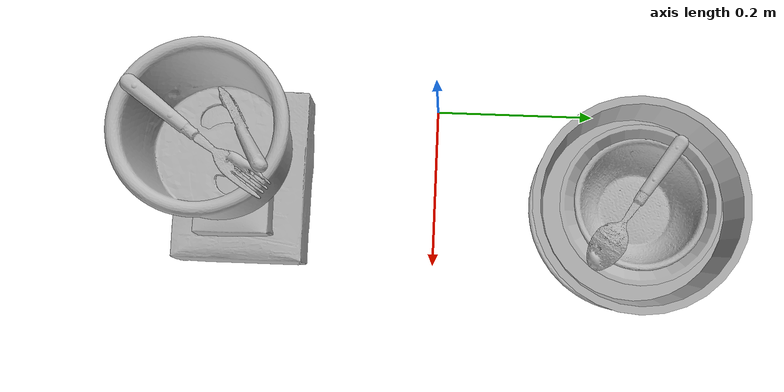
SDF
<?xml version="1.0" ?>
<sdf version="1.4">

  <world name="default">

    <light name="light1" type="point">

      <pose>0 0 1 0 0 0</pose>

      <diffuse>3 3 3 1</diffuse>

      <specular>3 3 3 1</specular>

    </light>

    <light name="light2" type="point">

      <pose>0 0.5 2 0 0 0</pose>

      <diffuse>1 1 1 1</diffuse>

      <specular>1 1 1 1</specular>

    </light>

    <light name="light3" type="point">

      <pose>0 0.5 2 0 0 0</pose>

      <diffuse>3 3 3 1</diffuse>

      <specular>3 3 3 1</specular>

    </light>

    <scene>

      <ambient>0.7 0.7 0.7</ambient>

    </scene>

    <model name="plate1">

      <link name="link_plate1">

        <collision name="default">

          <geometry>

            <mesh>

              <uri>model://plate/collision_meshes/collision.obj</uri>

              <scale>1.0 1.0 1.0</scale>

            </mesh>

          </geometry>

          <surface>

            <friction>

              <ode>

                <mu>0.5</mu>

                <mu2>0.5</mu2>

              </ode>

            </friction>

          </surface>

        </collision>

        <visual name="default">

          <geometry>

            <mesh>

              <uri>model://plate/visual_meshes/visual.dae</uri>

              <scale>1.0 1.0 1.0</scale>

            </mesh>

          </geometry>

        </visual>

        <inertial>

          <mass>0.11001742631196976</mass>

          <pose>-0.0006044686888344586 0.000278257648460567 -0.0010561998933553696 0.00221878912528286 -0.0032254756485070152 0.4526088917028743</pose>

          <inertia>

            <ixx>0.00051466376</ixx>

            <iyy>0.0005097412</iyy>

            <izz>0.0010066056</izz>

            <ixy>0</ixy>

            <ixz>0</ixz>

            <iyz>0</iyz>

          </inertia>

        </inertial>

      </link>

      <pose>0.1199374571442604 0.24998325109481812 0.013745173811912537 -6.870898378876059e-05 -0.00015102525217542117 -0.0008199449430793549</pose>

    </model>

    <model name="plate2">

      <link name="link_plate2">

        <collision name="default">

          <geometry>

            <mesh>

              <uri>model://pan_tefal/collision_meshes/collision.obj</uri>

              <scale>1.0 1.0 1.0</scale>

            </mesh>

          </geometry>

          <surface>

            <friction>

              <ode>

                <mu>0.5</mu>

                <mu2>0.5</mu2>

              </ode>

            </friction>

          </surface>

        </collision>

        <visual name="default">

          <geometry>

            <mesh>

              <uri>model://pan_tefal/visual_meshes/visual.dae</uri>

              <scale>1.0 1.0 1.0</scale>

            </mesh>

          </geometry>

        </visual>

        <inertial>

          <mass>1.457576870918274</mass>

          <pose>-0.00018002426077146083 3.279360316810198e-05 -0.008514936082065105 0.0008190306735146073 -0.00033013365411173643 -0.33185917339097665</pose>

          <inertia>

            <ixx>0.010061583</ixx>

            <iyy>0.01012645</iyy>

            <izz>0.01852144</izz>

            <ixy>0</ixy>

            <ixz>0</ixz>

            <iyz>0</iyz>

          </inertia>

        </inertial>

      </link>

      <pose>0.12074202299118042 0.25039994716644287 0.06386708468198776 0.0001711654377627013 -0.005030634423203114 0.007852426093482258</pose>

    </model>

    <model name="bowl1">

      <link name="link_bowl1">

        <collision name="default">

          <geometry>

            <mesh>

              <uri>model://bowl_a/collision_meshes/collision.obj</uri>

              <scale>1.0 1.0 1.0</scale>

            </mesh>

          </geometry>

          <surface>

            <friction>

              <ode>

                <mu>0.5</mu>

                <mu2>0.5</mu2>

              </ode>

            </friction>

          </surface>

        </collision>

        <visual name="default">

          <geometry>

            <mesh>

              <uri>model://bowl_a/visual_meshes/visual.dae</uri>

              <scale>1.0 1.0 1.0</scale>

            </mesh>

          </geometry>

        </visual>

        <inertial>

          <mass>0.29746556282043457</mass>

          <pose>0.0002786756958812475 4.7311452362919226e-05 -0.0013765294570475817 -0.0009805438325310402 -0.001093816410149737 -0.19123071729823712</pose>

          <inertia>

            <ixx>0.0008468981</ixx>

            <iyy>0.00085209764</iyy>

            <izz>0.0015062407</izz>

            <ixy>0</ixy>

            <ixz>0</ixz>

            <iyz>0</iyz>

          </inertia>

        </inertial>

      </link>

      <pose>0.12043753266334534 0.24972544610500336 0.06393508613109589 0.0021809924043001937 -0.005052287040652127 0.014174120151387618</pose>

    </model>

    <model name="bowl2">

      <link name="link_bowl2">

        <collision name="default">

          <geometry>

            <mesh>

              <uri>model://bowl/collision_meshes/collision.obj</uri>

              <scale>1.0 1.0 1.0</scale>

            </mesh>

          </geometry>

          <surface>

            <friction>

              <ode>

                <mu>0.5</mu>

                <mu2>0.5</mu2>

              </ode>

            </friction>

          </surface>

        </collision>

        <visual name="default">

          <geometry>

            <mesh>

              <uri>model://bowl/visual_meshes/visual.dae</uri>

              <scale>1.0 1.0 1.0</scale>

            </mesh>

          </geometry>

        </visual>

        <inertial>

          <mass>0.12348172068595886</mass>

          <pose>0.0002044529828708619 -0.0010302055161446333 -0.0008042656118050218 -0.01576411854188812 0.014546757923928972 0.7140383762832406</pose>

          <inertia>

            <ixx>0.0002836472</ixx>

            <iyy>0.00027730947</iyy>

            <izz>0.00047719217</izz>

            <ixy>0</ixy>

            <ixz>0</ixz>

            <iyz>0</iyz>

          </inertia>

        </inertial>

      </link>

      <pose>0.12159596383571625 0.24968327581882477 0.07301471382379532 0.015363399688484217 -0.060192924325834035 0.00011225076106464565</pose>

    </model>

    <model name="silverware1">

      <link name="link_silverware1">

        <collision name="default">

          <geometry>

            <mesh>

              <uri>model://spoon/collision_meshes/collision.obj</uri>

              <scale>1.0 1.0 1.0</scale>

            </mesh>

          </geometry>

          <surface>

            <friction>

              <ode>

                <mu>0.5</mu>

                <mu2>0.5</mu2>

              </ode>

            </friction>

          </surface>

        </collision>

        <visual name="default">

          <geometry>

            <mesh>

              <uri>model://spoon/visual_meshes/visual.dae</uri>

              <scale>1.0 1.0 1.0</scale>

            </mesh>

          </geometry>

        </visual>

        <inertial>

          <mass>0.03284037858247757</mass>

          <pose>-0.005526319611817598 -0.001603417214937508 -0.000727165665011853 0.03521671059584429 -0.039065856285187314 0.0061506144474233635</pose>

          <inertia>

            <ixx>1.8266356e-06</ixx>

            <iyy>0.00012495652</iyy>

            <izz>0.00012585736</izz>

            <ixy>0</ixy>

            <ixz>0</ixz>

            <iyz>0</iyz>

          </inertia>

        </inertial>

      </link>

      <pose>0.11780045181512833 0.2433990091085434 0.10513176769018173 -3.0677121709641786 -0.05691388247469599 -0.5968198585544305</pose>

    </model>

    <model name="box1">

      <link name="link_box1">

        <collision name="default">

          <geometry>

            <mesh>

              <uri>model://cracker_box/collision_meshes/collision.obj</uri>

              <scale>1.0 1.0 1.0</scale>

            </mesh>

          </geometry>

          <surface>

            <friction>

              <ode>

                <mu>0.5</mu>

                <mu2>0.5</mu2>

              </ode>

            </friction>

          </surface>

        </collision>

        <visual name="default">

          <geometry>

            <mesh>

              <uri>model://cracker_box/visual_meshes/visual.dae</uri>

              <scale>1.0 1.0 1.0</scale>

            </mesh>

          </geometry>

        </visual>

        <inertial>

          <mass>2.434305191040039</mass>

          <pose>0.0009464126778766513 0.0002543424488976598 -0.0017029534792527556 -0.0003162073658586955 -0.011106488669321329 0.0025467952332158075</pose>

          <inertia>

            <ixx>0.0061917845</ixx>

            <iyy>0.010223853</iyy>

            <izz>0.014590379</izz>

            <ixy>0</ixy>

            <ixz>0</ixz>

            <iyz>0</iyz>

          </inertia>

        </inertial>

      </link>

      <pose>0.09967825561761856 -0.2401331216096878 0.03553078696131706 3.1372337658117404 -0.01653640693131418 0.00023598258813144847</pose>

    </model>

    <model name="box2">

      <link name="link_box2">

        <collision name="default">

          <geometry>

            <mesh>

              <uri>model://sugar_box/collision_meshes/collision.obj</uri>

              <scale>1.0 1.0 1.0</scale>

            </mesh>

          </geometry>

          <surface>

            <friction>

              <ode>

                <mu>0.5</mu>

                <mu2>0.5</mu2>

              </ode>

            </friction>

          </surface>

        </collision>

        <visual name="default">

          <geometry>

            <mesh>

              <uri>model://sugar_box/visual_meshes/visual.dae</uri>

              <scale>1.0 1.0 1.0</scale>

            </mesh>

          </geometry>

        </visual>

        <inertial>

          <mass>0.5700510144233704</mass>

          <pose>0.0010343727190047503 3.849109634757042e-05 -0.00036364805418998003 -0.00040462615490547663 0.0010506634056045778 0.0026153790218534064</pose>

          <inertia>

            <ixx>0.00047496508</ixx>

            <iyy>0.0015351841</iyy>

            <izz>0.0018377992</izz>

            <ixy>0</ixy>

            <ixz>0</ixz>

            <iyz>0</iyz>

          </inertia>

        </inertial>

      </link>

      <pose>0.08835526555776596 -0.240003302693367 0.09433893859386444 -0.0006865142525592024 -0.05109604157570926 0.000936354640034494</pose>

    </model>

    <model name="cup1">

      <link name="link_cup1">

        <collision name="default">

          <geometry>

            <mesh>

              <uri>model://i_cups/collision_meshes/collision.obj</uri>

              <scale>2.0 2.0 2.0</scale>

            </mesh>

          </geometry>

          <surface>

            <friction>

              <ode>

                <mu>0.5</mu>

                <mu2>0.5</mu2>

              </ode>

            </friction>

          </surface>

        </collision>

        <visual name="default">

          <geometry>

            <mesh>

              <uri>model://i_cups/visual_meshes/visual.dae</uri>

              <scale>2.0 2.0 2.0</scale>

            </mesh>

          </geometry>

        </visual>

        <inertial>

          <mass>0.8749163746833801</mass>

          <pose>0.0002248019736725837 0.0003359491820447147 -0.0017158064292743802 -0.028982988446176382 -0.03987323668700188 -0.3459135059395342</pose>

          <inertia>

            <ixx>0.0048453393</ixx>

            <iyy>0.0048880302</iyy>

            <izz>0.0054154512</izz>

            <ixy>0</ixy>

            <ixz>0</ixz>

            <iyz>0</iyz>

          </inertia>

        </inertial>

      </link>

      <pose>0.07557936012744904 -0.25053322315216064 0.1904681771993637 0.0015491455417916708 -0.06609981803668338 -0.007188836546861172</pose>

    </model>

    <model name="silverware2">

      <link name="link_silverware2">

        <collision name="default">

          <geometry>

            <mesh>

              <uri>model://fork/collision_meshes/collision.obj</uri>

              <scale>1.0 1.0 1.0</scale>

            </mesh>

          </geometry>

          <surface>

            <friction>

              <ode>

                <mu>0.5</mu>

                <mu2>0.5</mu2>

              </ode>

            </friction>

          </surface>

        </collision>

        <visual name="default">

          <geometry>

            <mesh>

              <uri>model://fork/visual_meshes/visual.dae</uri>

              <scale>1.0 1.0 1.0</scale>

            </mesh>

          </geometry>

        </visual>

        <inertial>

          <mass>0.021080315113067627</mass>

          <pose>-0.02957003377377987 0.00046588227269239724 0.0003218860656488687 -0.013550583544297463 -0.010977830979267335 0.014453899239778455</pose>

          <inertia>

            <ixx>7.3898417e-07</ixx>

            <iyy>5.503463e-05</iyy>

            <izz>5.5365177e-05</izz>

            <ixy>0</ixy>

            <ixz>0</ixz>

            <iyz>0</iyz>

          </inertia>

        </inertial>

      </link>

      <pose>0.08271770179271698 -0.25115907192230225 0.2699134349822998 0.025059591049996773 0.011191238484598732 0.9365169403583208</pose>

    </model>

    <model name="silverware3">

      <link name="link_silverware3">

        <collision name="default">

          <geometry>

            <mesh>

              <uri>model://knife/collision_meshes/collision.obj</uri>

              <scale>1.0 1.0 1.0</scale>

            </mesh>

          </geometry>

          <surface>

            <friction>

              <ode>

                <mu>0.5</mu>

                <mu2>0.5</mu2>

              </ode>

            </friction>

          </surface>

        </collision>

        <visual name="default">

          <geometry>

            <mesh>

              <uri>model://knife/visual_meshes/visual.dae</uri>

              <scale>1.0 1.0 1.0</scale>

            </mesh>

          </geometry>

        </visual>

        <inertial>

          <mass>0.03557601198554039</mass>

          <pose>-0.023785259574651718 0.0015275123296305537 5.062016498413868e-05 0.07305791577183936 0.01724842049726123 -0.007409813921982597</pose>

          <inertia>

            <ixx>1.0097915e-06</ixx>

            <iyy>0.00013667726</iyy>

            <izz>0.00013700248</izz>

            <ixy>0</ixy>

            <ixz>0</ixz>

            <iyz>0</iyz>

          </inertia>

        </inertial>

      </link>

      <pose>0.061674922704696655 -0.21498236060142517 0.20783540606498718 1.0466689885883593 0.8570987057232929 -2.5270289796006513</pose>

    </model>

  </world>

</sdf>
